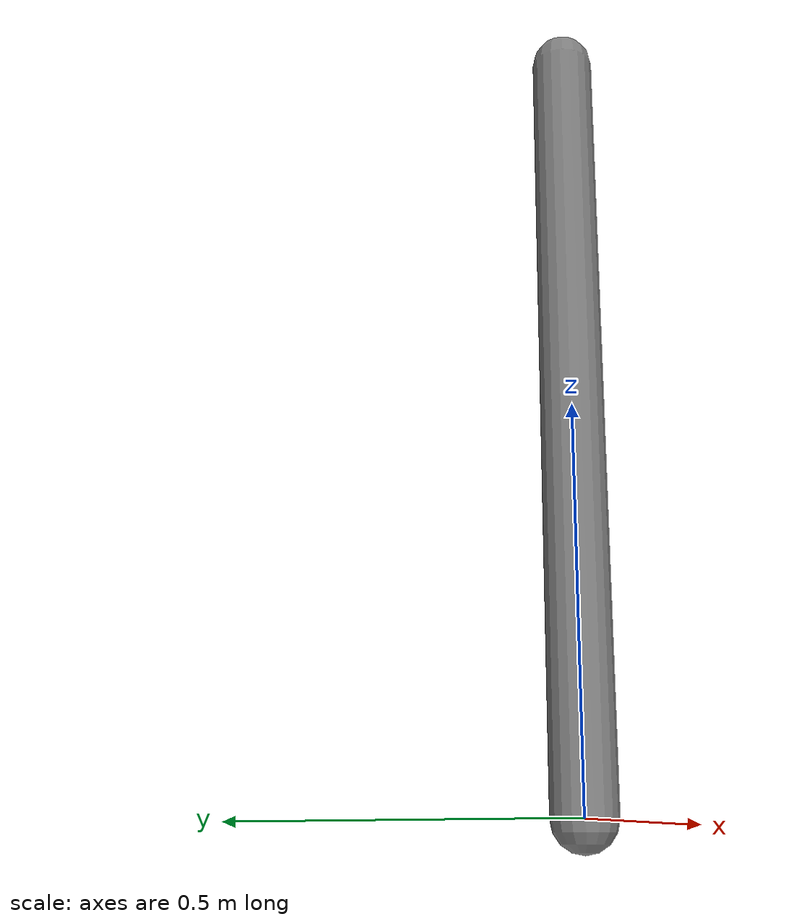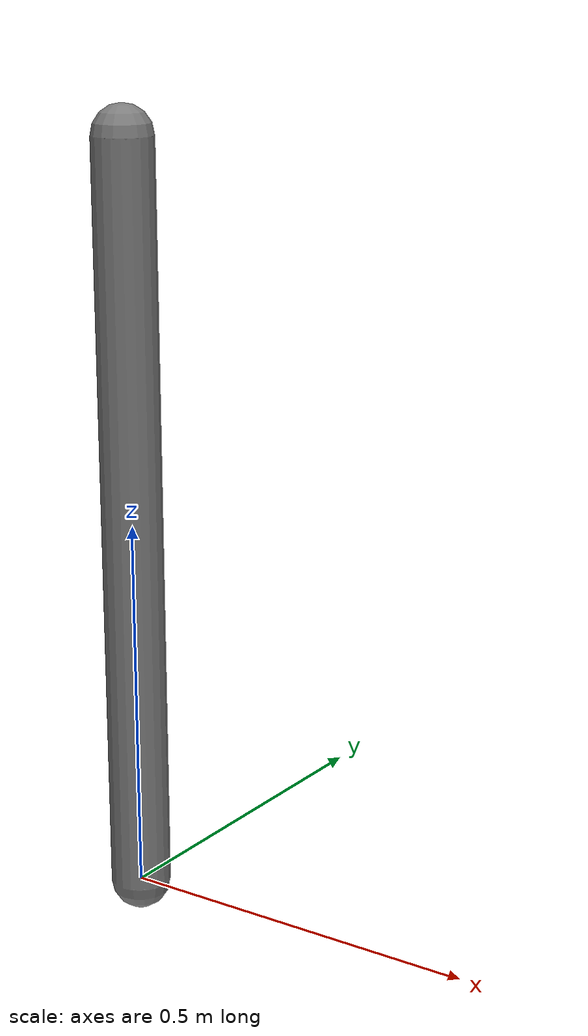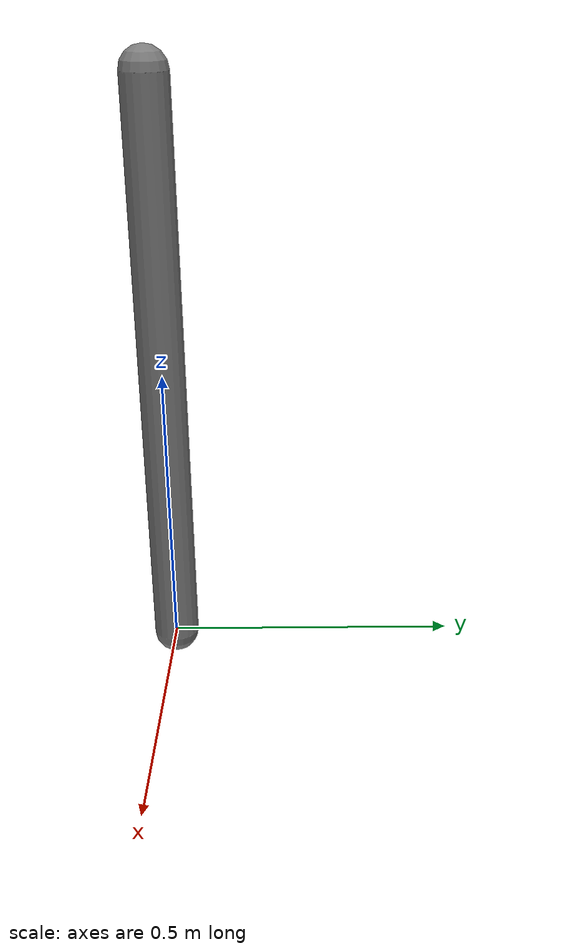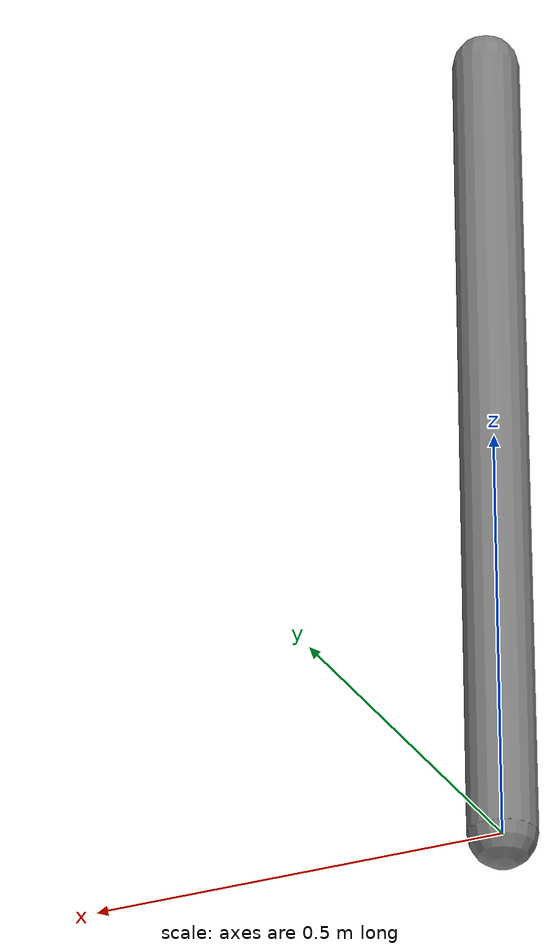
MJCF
<mujoco model="imported_pendulum">
  <compiler angle="radian"/>
  <option timestep="0.01" gravity="0 0 -9.81"/>
  <worldbody>
    <body name="pendulum" pos="0 0 1">
      <inertial pos="0 0 -0.5" mass="1" diaginertia="0.1 0.1 0.01"/>
      <joint name="hinge" type="hinge" axis="0 1 0" damping="0.04"
             limited="true" range="-1.5 1.5"/>
      <geom name="rod" type="capsule" size="0.04 0.5" pos="0 0 -0.5"/>
    </body>
  </worldbody>
  <actuator>
    <motor name="hinge_motor" joint="hinge" gear="1" ctrlrange="-2 2"/>
  </actuator>
  <keyframe>
    <key name="displaced" qpos="0.25"/>
  </keyframe>
</mujoco>
